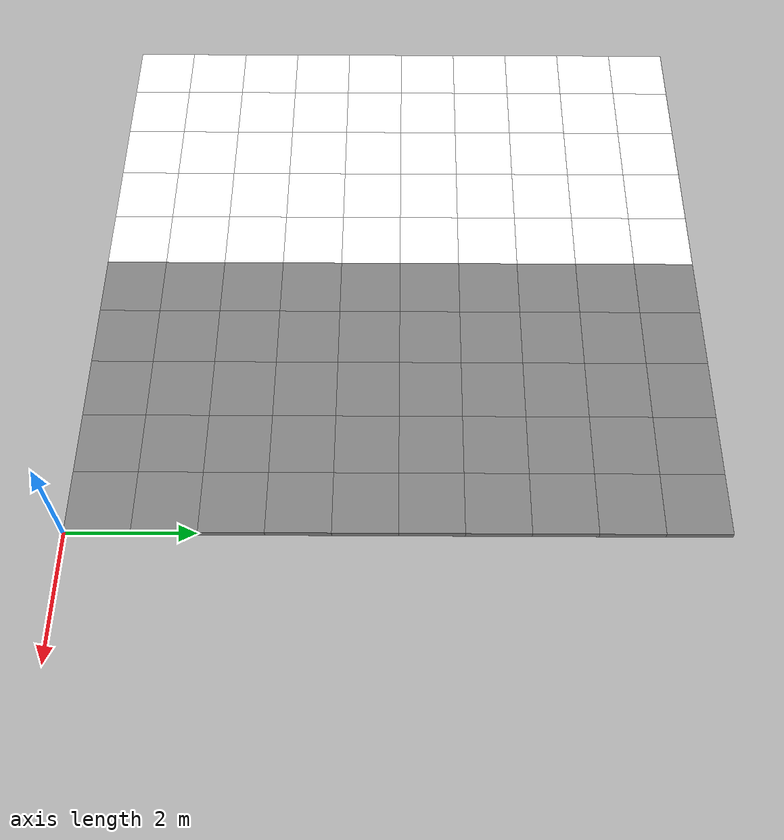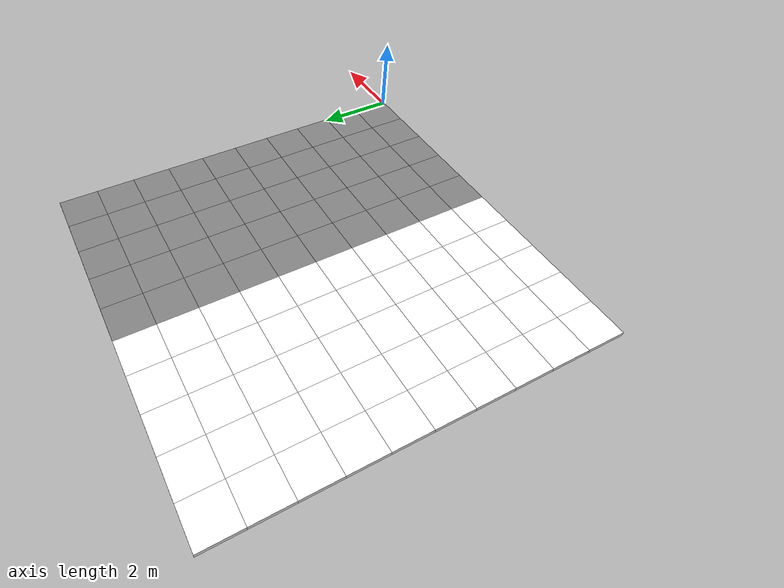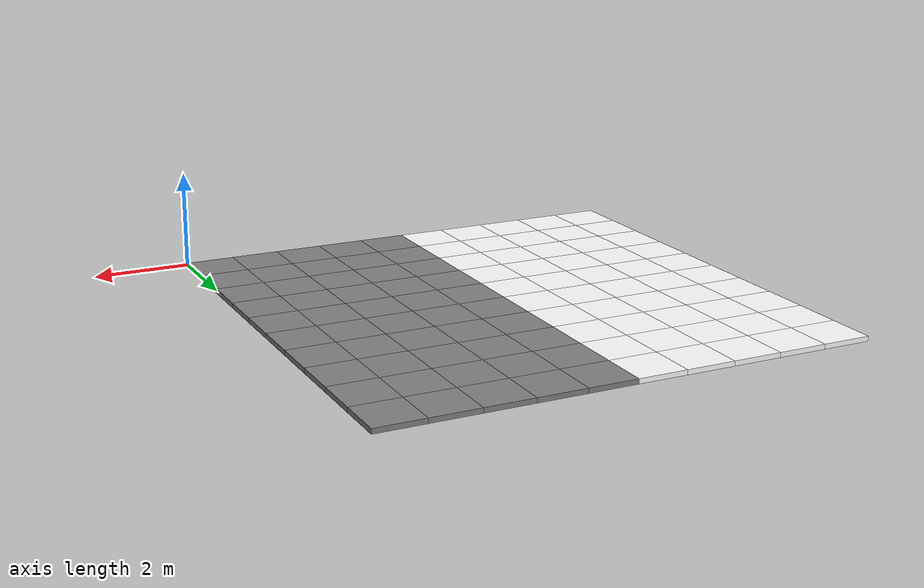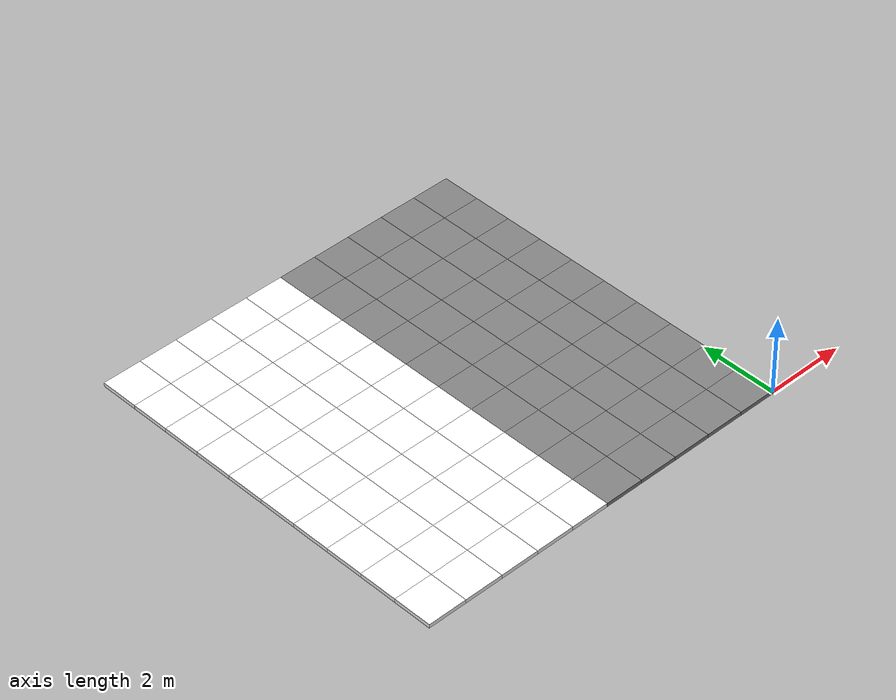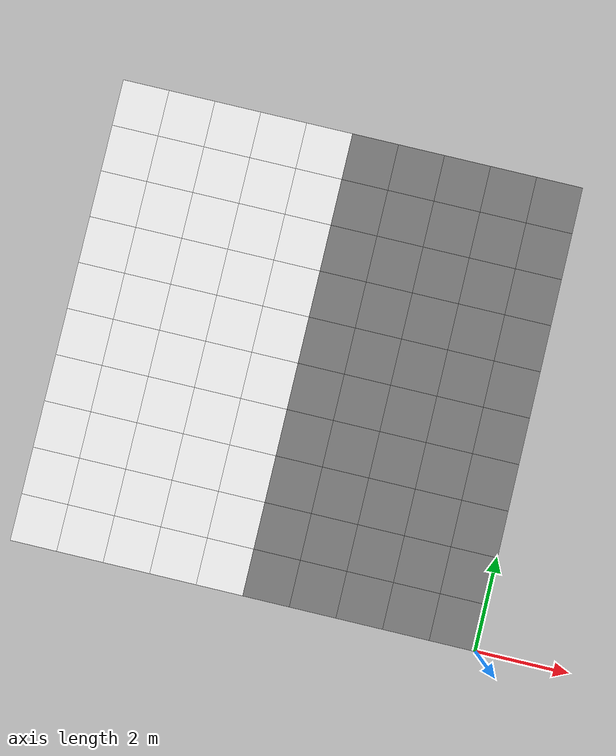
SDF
<sdf version="1.8">
 <world name="binary_discrimination_world">
  <model name="tile_-9.5_0.5">
   <static>true</static>
   <pose>-9.5 0.5 0 0 0 0</pose>
   <link name="link">
    <collision name="collision"><geometry><box><size>1 1 0.1</size></box></geometry></collision>
    <visual name="visual">
     <geometry><box><size>1 1 0.1</size></box></geometry>
     <material><ambient>1 1 1 1</ambient><diffuse>1 1 1 1</diffuse></material>
    </visual>
   </link>
  </model>
  <model name="tile_-9.5_1.5">
   <static>true</static>
   <pose>-9.5 1.5 0 0 0 0</pose>
   <link name="link">
    <collision name="collision"><geometry><box><size>1 1 0.1</size></box></geometry></collision>
    <visual name="visual">
     <geometry><box><size>1 1 0.1</size></box></geometry>
     <material><ambient>1 1 1 1</ambient><diffuse>1 1 1 1</diffuse></material>
    </visual>
   </link>
  </model>
  <model name="tile_-9.5_2.5">
   <static>true</static>
   <pose>-9.5 2.5 0 0 0 0</pose>
   <link name="link">
    <collision name="collision"><geometry><box><size>1 1 0.1</size></box></geometry></collision>
    <visual name="visual">
     <geometry><box><size>1 1 0.1</size></box></geometry>
     <material><ambient>1 1 1 1</ambient><diffuse>1 1 1 1</diffuse></material>
    </visual>
   </link>
  </model>
  <model name="tile_-9.5_3.5">
   <static>true</static>
   <pose>-9.5 3.5 0 0 0 0</pose>
   <link name="link">
    <collision name="collision"><geometry><box><size>1 1 0.1</size></box></geometry></collision>
    <visual name="visual">
     <geometry><box><size>1 1 0.1</size></box></geometry>
     <material><ambient>1 1 1 1</ambient><diffuse>1 1 1 1</diffuse></material>
    </visual>
   </link>
  </model>
  <model name="tile_-9.5_4.5">
   <static>true</static>
   <pose>-9.5 4.5 0 0 0 0</pose>
   <link name="link">
    <collision name="collision"><geometry><box><size>1 1 0.1</size></box></geometry></collision>
    <visual name="visual">
     <geometry><box><size>1 1 0.1</size></box></geometry>
     <material><ambient>1 1 1 1</ambient><diffuse>1 1 1 1</diffuse></material>
    </visual>
   </link>
  </model>
  <model name="tile_-9.5_5.5">
   <static>true</static>
   <pose>-9.5 5.5 0 0 0 0</pose>
   <link name="link">
    <collision name="collision"><geometry><box><size>1 1 0.1</size></box></geometry></collision>
    <visual name="visual">
     <geometry><box><size>1 1 0.1</size></box></geometry>
     <material><ambient>1 1 1 1</ambient><diffuse>1 1 1 1</diffuse></material>
    </visual>
   </link>
  </model>
  <model name="tile_-9.5_6.5">
   <static>true</static>
   <pose>-9.5 6.5 0 0 0 0</pose>
   <link name="link">
    <collision name="collision"><geometry><box><size>1 1 0.1</size></box></geometry></collision>
    <visual name="visual">
     <geometry><box><size>1 1 0.1</size></box></geometry>
     <material><ambient>1 1 1 1</ambient><diffuse>1 1 1 1</diffuse></material>
    </visual>
   </link>
  </model>
  <model name="tile_-9.5_7.5">
   <static>true</static>
   <pose>-9.5 7.5 0 0 0 0</pose>
   <link name="link">
    <collision name="collision"><geometry><box><size>1 1 0.1</size></box></geometry></collision>
    <visual name="visual">
     <geometry><box><size>1 1 0.1</size></box></geometry>
     <material><ambient>1 1 1 1</ambient><diffuse>1 1 1 1</diffuse></material>
    </visual>
   </link>
  </model>
  <model name="tile_-9.5_8.5">
   <static>true</static>
   <pose>-9.5 8.5 0 0 0 0</pose>
   <link name="link">
    <collision name="collision"><geometry><box><size>1 1 0.1</size></box></geometry></collision>
    <visual name="visual">
     <geometry><box><size>1 1 0.1</size></box></geometry>
     <material><ambient>1 1 1 1</ambient><diffuse>1 1 1 1</diffuse></material>
    </visual>
   </link>
  </model>
  <model name="tile_-9.5_9.5">
   <static>true</static>
   <pose>-9.5 9.5 0 0 0 0</pose>
   <link name="link">
    <collision name="collision"><geometry><box><size>1 1 0.1</size></box></geometry></collision>
    <visual name="visual">
     <geometry><box><size>1 1 0.1</size></box></geometry>
     <material><ambient>1 1 1 1</ambient><diffuse>1 1 1 1</diffuse></material>
    </visual>
   </link>
  </model>
  <model name="tile_-8.5_0.5">
   <static>true</static>
   <pose>-8.5 0.5 0 0 0 0</pose>
   <link name="link">
    <collision name="collision"><geometry><box><size>1 1 0.1</size></box></geometry></collision>
    <visual name="visual">
     <geometry><box><size>1 1 0.1</size></box></geometry>
     <material><ambient>1 1 1 1</ambient><diffuse>1 1 1 1</diffuse></material>
    </visual>
   </link>
  </model>
  <model name="tile_-8.5_1.5">
   <static>true</static>
   <pose>-8.5 1.5 0 0 0 0</pose>
   <link name="link">
    <collision name="collision"><geometry><box><size>1 1 0.1</size></box></geometry></collision>
    <visual name="visual">
     <geometry><box><size>1 1 0.1</size></box></geometry>
     <material><ambient>1 1 1 1</ambient><diffuse>1 1 1 1</diffuse></material>
    </visual>
   </link>
  </model>
  <model name="tile_-8.5_2.5">
   <static>true</static>
   <pose>-8.5 2.5 0 0 0 0</pose>
   <link name="link">
    <collision name="collision"><geometry><box><size>1 1 0.1</size></box></geometry></collision>
    <visual name="visual">
     <geometry><box><size>1 1 0.1</size></box></geometry>
     <material><ambient>1 1 1 1</ambient><diffuse>1 1 1 1</diffuse></material>
    </visual>
   </link>
  </model>
  <model name="tile_-8.5_3.5">
   <static>true</static>
   <pose>-8.5 3.5 0 0 0 0</pose>
   <link name="link">
    <collision name="collision"><geometry><box><size>1 1 0.1</size></box></geometry></collision>
    <visual name="visual">
     <geometry><box><size>1 1 0.1</size></box></geometry>
     <material><ambient>1 1 1 1</ambient><diffuse>1 1 1 1</diffuse></material>
    </visual>
   </link>
  </model>
  <model name="tile_-8.5_4.5">
   <static>true</static>
   <pose>-8.5 4.5 0 0 0 0</pose>
   <link name="link">
    <collision name="collision"><geometry><box><size>1 1 0.1</size></box></geometry></collision>
    <visual name="visual">
     <geometry><box><size>1 1 0.1</size></box></geometry>
     <material><ambient>1 1 1 1</ambient><diffuse>1 1 1 1</diffuse></material>
    </visual>
   </link>
  </model>
  <model name="tile_-8.5_5.5">
   <static>true</static>
   <pose>-8.5 5.5 0 0 0 0</pose>
   <link name="link">
    <collision name="collision"><geometry><box><size>1 1 0.1</size></box></geometry></collision>
    <visual name="visual">
     <geometry><box><size>1 1 0.1</size></box></geometry>
     <material><ambient>1 1 1 1</ambient><diffuse>1 1 1 1</diffuse></material>
    </visual>
   </link>
  </model>
  <model name="tile_-8.5_6.5">
   <static>true</static>
   <pose>-8.5 6.5 0 0 0 0</pose>
   <link name="link">
    <collision name="collision"><geometry><box><size>1 1 0.1</size></box></geometry></collision>
    <visual name="visual">
     <geometry><box><size>1 1 0.1</size></box></geometry>
     <material><ambient>1 1 1 1</ambient><diffuse>1 1 1 1</diffuse></material>
    </visual>
   </link>
  </model>
  <model name="tile_-8.5_7.5">
   <static>true</static>
   <pose>-8.5 7.5 0 0 0 0</pose>
   <link name="link">
    <collision name="collision"><geometry><box><size>1 1 0.1</size></box></geometry></collision>
    <visual name="visual">
     <geometry><box><size>1 1 0.1</size></box></geometry>
     <material><ambient>1 1 1 1</ambient><diffuse>1 1 1 1</diffuse></material>
    </visual>
   </link>
  </model>
  <model name="tile_-8.5_8.5">
   <static>true</static>
   <pose>-8.5 8.5 0 0 0 0</pose>
   <link name="link">
    <collision name="collision"><geometry><box><size>1 1 0.1</size></box></geometry></collision>
    <visual name="visual">
     <geometry><box><size>1 1 0.1</size></box></geometry>
     <material><ambient>1 1 1 1</ambient><diffuse>1 1 1 1</diffuse></material>
    </visual>
   </link>
  </model>
  <model name="tile_-8.5_9.5">
   <static>true</static>
   <pose>-8.5 9.5 0 0 0 0</pose>
   <link name="link">
    <collision name="collision"><geometry><box><size>1 1 0.1</size></box></geometry></collision>
    <visual name="visual">
     <geometry><box><size>1 1 0.1</size></box></geometry>
     <material><ambient>1 1 1 1</ambient><diffuse>1 1 1 1</diffuse></material>
    </visual>
   </link>
  </model>
  <model name="tile_-7.5_0.5">
   <static>true</static>
   <pose>-7.5 0.5 0 0 0 0</pose>
   <link name="link">
    <collision name="collision"><geometry><box><size>1 1 0.1</size></box></geometry></collision>
    <visual name="visual">
     <geometry><box><size>1 1 0.1</size></box></geometry>
     <material><ambient>1 1 1 1</ambient><diffuse>1 1 1 1</diffuse></material>
    </visual>
   </link>
  </model>
  <model name="tile_-7.5_1.5">
   <static>true</static>
   <pose>-7.5 1.5 0 0 0 0</pose>
   <link name="link">
    <collision name="collision"><geometry><box><size>1 1 0.1</size></box></geometry></collision>
    <visual name="visual">
     <geometry><box><size>1 1 0.1</size></box></geometry>
     <material><ambient>1 1 1 1</ambient><diffuse>1 1 1 1</diffuse></material>
    </visual>
   </link>
  </model>
  <model name="tile_-7.5_2.5">
   <static>true</static>
   <pose>-7.5 2.5 0 0 0 0</pose>
   <link name="link">
    <collision name="collision"><geometry><box><size>1 1 0.1</size></box></geometry></collision>
    <visual name="visual">
     <geometry><box><size>1 1 0.1</size></box></geometry>
     <material><ambient>1 1 1 1</ambient><diffuse>1 1 1 1</diffuse></material>
    </visual>
   </link>
  </model>
  <model name="tile_-7.5_3.5">
   <static>true</static>
   <pose>-7.5 3.5 0 0 0 0</pose>
   <link name="link">
    <collision name="collision"><geometry><box><size>1 1 0.1</size></box></geometry></collision>
    <visual name="visual">
     <geometry><box><size>1 1 0.1</size></box></geometry>
     <material><ambient>1 1 1 1</ambient><diffuse>1 1 1 1</diffuse></material>
    </visual>
   </link>
  </model>
  <model name="tile_-7.5_4.5">
   <static>true</static>
   <pose>-7.5 4.5 0 0 0 0</pose>
   <link name="link">
    <collision name="collision"><geometry><box><size>1 1 0.1</size></box></geometry></collision>
    <visual name="visual">
     <geometry><box><size>1 1 0.1</size></box></geometry>
     <material><ambient>1 1 1 1</ambient><diffuse>1 1 1 1</diffuse></material>
    </visual>
   </link>
  </model>
  <model name="tile_-7.5_5.5">
   <static>true</static>
   <pose>-7.5 5.5 0 0 0 0</pose>
   <link name="link">
    <collision name="collision"><geometry><box><size>1 1 0.1</size></box></geometry></collision>
    <visual name="visual">
     <geometry><box><size>1 1 0.1</size></box></geometry>
     <material><ambient>1 1 1 1</ambient><diffuse>1 1 1 1</diffuse></material>
    </visual>
   </link>
  </model>
  <model name="tile_-7.5_6.5">
   <static>true</static>
   <pose>-7.5 6.5 0 0 0 0</pose>
   <link name="link">
    <collision name="collision"><geometry><box><size>1 1 0.1</size></box></geometry></collision>
    <visual name="visual">
     <geometry><box><size>1 1 0.1</size></box></geometry>
     <material><ambient>1 1 1 1</ambient><diffuse>1 1 1 1</diffuse></material>
    </visual>
   </link>
  </model>
  <model name="tile_-7.5_7.5">
   <static>true</static>
   <pose>-7.5 7.5 0 0 0 0</pose>
   <link name="link">
    <collision name="collision"><geometry><box><size>1 1 0.1</size></box></geometry></collision>
    <visual name="visual">
     <geometry><box><size>1 1 0.1</size></box></geometry>
     <material><ambient>1 1 1 1</ambient><diffuse>1 1 1 1</diffuse></material>
    </visual>
   </link>
  </model>
  <model name="tile_-7.5_8.5">
   <static>true</static>
   <pose>-7.5 8.5 0 0 0 0</pose>
   <link name="link">
    <collision name="collision"><geometry><box><size>1 1 0.1</size></box></geometry></collision>
    <visual name="visual">
     <geometry><box><size>1 1 0.1</size></box></geometry>
     <material><ambient>1 1 1 1</ambient><diffuse>1 1 1 1</diffuse></material>
    </visual>
   </link>
  </model>
  <model name="tile_-7.5_9.5">
   <static>true</static>
   <pose>-7.5 9.5 0 0 0 0</pose>
   <link name="link">
    <collision name="collision"><geometry><box><size>1 1 0.1</size></box></geometry></collision>
    <visual name="visual">
     <geometry><box><size>1 1 0.1</size></box></geometry>
     <material><ambient>1 1 1 1</ambient><diffuse>1 1 1 1</diffuse></material>
    </visual>
   </link>
  </model>
  <model name="tile_-6.5_0.5">
   <static>true</static>
   <pose>-6.5 0.5 0 0 0 0</pose>
   <link name="link">
    <collision name="collision"><geometry><box><size>1 1 0.1</size></box></geometry></collision>
    <visual name="visual">
     <geometry><box><size>1 1 0.1</size></box></geometry>
     <material><ambient>1 1 1 1</ambient><diffuse>1 1 1 1</diffuse></material>
    </visual>
   </link>
  </model>
  <model name="tile_-6.5_1.5">
   <static>true</static>
   <pose>-6.5 1.5 0 0 0 0</pose>
   <link name="link">
    <collision name="collision"><geometry><box><size>1 1 0.1</size></box></geometry></collision>
    <visual name="visual">
     <geometry><box><size>1 1 0.1</size></box></geometry>
     <material><ambient>1 1 1 1</ambient><diffuse>1 1 1 1</diffuse></material>
    </visual>
   </link>
  </model>
  <model name="tile_-6.5_2.5">
   <static>true</static>
   <pose>-6.5 2.5 0 0 0 0</pose>
   <link name="link">
    <collision name="collision"><geometry><box><size>1 1 0.1</size></box></geometry></collision>
    <visual name="visual">
     <geometry><box><size>1 1 0.1</size></box></geometry>
     <material><ambient>1 1 1 1</ambient><diffuse>1 1 1 1</diffuse></material>
    </visual>
   </link>
  </model>
  <model name="tile_-6.5_3.5">
   <static>true</static>
   <pose>-6.5 3.5 0 0 0 0</pose>
   <link name="link">
    <collision name="collision"><geometry><box><size>1 1 0.1</size></box></geometry></collision>
    <visual name="visual">
     <geometry><box><size>1 1 0.1</size></box></geometry>
     <material><ambient>1 1 1 1</ambient><diffuse>1 1 1 1</diffuse></material>
    </visual>
   </link>
  </model>
  <model name="tile_-6.5_4.5">
   <static>true</static>
   <pose>-6.5 4.5 0 0 0 0</pose>
   <link name="link">
    <collision name="collision"><geometry><box><size>1 1 0.1</size></box></geometry></collision>
    <visual name="visual">
     <geometry><box><size>1 1 0.1</size></box></geometry>
     <material><ambient>1 1 1 1</ambient><diffuse>1 1 1 1</diffuse></material>
    </visual>
   </link>
  </model>
  <model name="tile_-6.5_5.5">
   <static>true</static>
   <pose>-6.5 5.5 0 0 0 0</pose>
   <link name="link">
    <collision name="collision"><geometry><box><size>1 1 0.1</size></box></geometry></collision>
    <visual name="visual">
     <geometry><box><size>1 1 0.1</size></box></geometry>
     <material><ambient>1 1 1 1</ambient><diffuse>1 1 1 1</diffuse></material>
    </visual>
   </link>
  </model>
  <model name="tile_-6.5_6.5">
   <static>true</static>
   <pose>-6.5 6.5 0 0 0 0</pose>
   <link name="link">
    <collision name="collision"><geometry><box><size>1 1 0.1</size></box></geometry></collision>
    <visual name="visual">
     <geometry><box><size>1 1 0.1</size></box></geometry>
     <material><ambient>1 1 1 1</ambient><diffuse>1 1 1 1</diffuse></material>
    </visual>
   </link>
  </model>
  <model name="tile_-6.5_7.5">
   <static>true</static>
   <pose>-6.5 7.5 0 0 0 0</pose>
   <link name="link">
    <collision name="collision"><geometry><box><size>1 1 0.1</size></box></geometry></collision>
    <visual name="visual">
     <geometry><box><size>1 1 0.1</size></box></geometry>
     <material><ambient>1 1 1 1</ambient><diffuse>1 1 1 1</diffuse></material>
    </visual>
   </link>
  </model>
  <model name="tile_-6.5_8.5">
   <static>true</static>
   <pose>-6.5 8.5 0 0 0 0</pose>
   <link name="link">
    <collision name="collision"><geometry><box><size>1 1 0.1</size></box></geometry></collision>
    <visual name="visual">
     <geometry><box><size>1 1 0.1</size></box></geometry>
     <material><ambient>1 1 1 1</ambient><diffuse>1 1 1 1</diffuse></material>
    </visual>
   </link>
  </model>
  <model name="tile_-6.5_9.5">
   <static>true</static>
   <pose>-6.5 9.5 0 0 0 0</pose>
   <link name="link">
    <collision name="collision"><geometry><box><size>1 1 0.1</size></box></geometry></collision>
    <visual name="visual">
     <geometry><box><size>1 1 0.1</size></box></geometry>
     <material><ambient>1 1 1 1</ambient><diffuse>1 1 1 1</diffuse></material>
    </visual>
   </link>
  </model>
  <model name="tile_-5.5_0.5">
   <static>true</static>
   <pose>-5.5 0.5 0 0 0 0</pose>
   <link name="link">
    <collision name="collision"><geometry><box><size>1 1 0.1</size></box></geometry></collision>
    <visual name="visual">
     <geometry><box><size>1 1 0.1</size></box></geometry>
     <material><ambient>1 1 1 1</ambient><diffuse>1 1 1 1</diffuse></material>
    </visual>
   </link>
  </model>
  <model name="tile_-5.5_1.5">
   <static>true</static>
   <pose>-5.5 1.5 0 0 0 0</pose>
   <link name="link">
    <collision name="collision"><geometry><box><size>1 1 0.1</size></box></geometry></collision>
    <visual name="visual">
     <geometry><box><size>1 1 0.1</size></box></geometry>
     <material><ambient>1 1 1 1</ambient><diffuse>1 1 1 1</diffuse></material>
    </visual>
   </link>
  </model>
  <model name="tile_-5.5_2.5">
   <static>true</static>
   <pose>-5.5 2.5 0 0 0 0</pose>
   <link name="link">
    <collision name="collision"><geometry><box><size>1 1 0.1</size></box></geometry></collision>
    <visual name="visual">
     <geometry><box><size>1 1 0.1</size></box></geometry>
     <material><ambient>1 1 1 1</ambient><diffuse>1 1 1 1</diffuse></material>
    </visual>
   </link>
  </model>
  <model name="tile_-5.5_3.5">
   <static>true</static>
   <pose>-5.5 3.5 0 0 0 0</pose>
   <link name="link">
    <collision name="collision"><geometry><box><size>1 1 0.1</size></box></geometry></collision>
    <visual name="visual">
     <geometry><box><size>1 1 0.1</size></box></geometry>
     <material><ambient>1 1 1 1</ambient><diffuse>1 1 1 1</diffuse></material>
    </visual>
   </link>
  </model>
  <model name="tile_-5.5_4.5">
   <static>true</static>
   <pose>-5.5 4.5 0 0 0 0</pose>
   <link name="link">
    <collision name="collision"><geometry><box><size>1 1 0.1</size></box></geometry></collision>
    <visual name="visual">
     <geometry><box><size>1 1 0.1</size></box></geometry>
     <material><ambient>1 1 1 1</ambient><diffuse>1 1 1 1</diffuse></material>
    </visual>
   </link>
  </model>
  <model name="tile_-5.5_5.5">
   <static>true</static>
   <pose>-5.5 5.5 0 0 0 0</pose>
   <link name="link">
    <collision name="collision"><geometry><box><size>1 1 0.1</size></box></geometry></collision>
    <visual name="visual">
     <geometry><box><size>1 1 0.1</size></box></geometry>
     <material><ambient>1 1 1 1</ambient><diffuse>1 1 1 1</diffuse></material>
    </visual>
   </link>
  </model>
  <model name="tile_-5.5_6.5">
   <static>true</static>
   <pose>-5.5 6.5 0 0 0 0</pose>
   <link name="link">
    <collision name="collision"><geometry><box><size>1 1 0.1</size></box></geometry></collision>
    <visual name="visual">
     <geometry><box><size>1 1 0.1</size></box></geometry>
     <material><ambient>1 1 1 1</ambient><diffuse>1 1 1 1</diffuse></material>
    </visual>
   </link>
  </model>
  <model name="tile_-5.5_7.5">
   <static>true</static>
   <pose>-5.5 7.5 0 0 0 0</pose>
   <link name="link">
    <collision name="collision"><geometry><box><size>1 1 0.1</size></box></geometry></collision>
    <visual name="visual">
     <geometry><box><size>1 1 0.1</size></box></geometry>
     <material><ambient>1 1 1 1</ambient><diffuse>1 1 1 1</diffuse></material>
    </visual>
   </link>
  </model>
  <model name="tile_-5.5_8.5">
   <static>true</static>
   <pose>-5.5 8.5 0 0 0 0</pose>
   <link name="link">
    <collision name="collision"><geometry><box><size>1 1 0.1</size></box></geometry></collision>
    <visual name="visual">
     <geometry><box><size>1 1 0.1</size></box></geometry>
     <material><ambient>1 1 1 1</ambient><diffuse>1 1 1 1</diffuse></material>
    </visual>
   </link>
  </model>
  <model name="tile_-5.5_9.5">
   <static>true</static>
   <pose>-5.5 9.5 0 0 0 0</pose>
   <link name="link">
    <collision name="collision"><geometry><box><size>1 1 0.1</size></box></geometry></collision>
    <visual name="visual">
     <geometry><box><size>1 1 0.1</size></box></geometry>
     <material><ambient>1 1 1 1</ambient><diffuse>1 1 1 1</diffuse></material>
    </visual>
   </link>
  </model>
  <model name="tile_-4.5_0.5">
   <static>true</static>
   <pose>-4.5 0.5 0 0 0 0</pose>
   <link name="link">
    <collision name="collision"><geometry><box><size>1 1 0.1</size></box></geometry></collision>
    <visual name="visual">
     <geometry><box><size>1 1 0.1</size></box></geometry>
     <material><ambient>0.5 0.5 0.5 1</ambient><diffuse>0.5 0.5 0.5 1</diffuse></material>
    </visual>
   </link>
  </model>
  <model name="tile_-4.5_1.5">
   <static>true</static>
   <pose>-4.5 1.5 0 0 0 0</pose>
   <link name="link">
    <collision name="collision"><geometry><box><size>1 1 0.1</size></box></geometry></collision>
    <visual name="visual">
     <geometry><box><size>1 1 0.1</size></box></geometry>
     <material><ambient>0.5 0.5 0.5 1</ambient><diffuse>0.5 0.5 0.5 1</diffuse></material>
    </visual>
   </link>
  </model>
  <model name="tile_-4.5_2.5">
   <static>true</static>
   <pose>-4.5 2.5 0 0 0 0</pose>
   <link name="link">
    <collision name="collision"><geometry><box><size>1 1 0.1</size></box></geometry></collision>
    <visual name="visual">
     <geometry><box><size>1 1 0.1</size></box></geometry>
     <material><ambient>0.5 0.5 0.5 1</ambient><diffuse>0.5 0.5 0.5 1</diffuse></material>
    </visual>
   </link>
  </model>
  <model name="tile_-4.5_3.5">
   <static>true</static>
   <pose>-4.5 3.5 0 0 0 0</pose>
   <link name="link">
    <collision name="collision"><geometry><box><size>1 1 0.1</size></box></geometry></collision>
    <visual name="visual">
     <geometry><box><size>1 1 0.1</size></box></geometry>
     <material><ambient>0.5 0.5 0.5 1</ambient><diffuse>0.5 0.5 0.5 1</diffuse></material>
    </visual>
   </link>
  </model>
  <model name="tile_-4.5_4.5">
   <static>true</static>
   <pose>-4.5 4.5 0 0 0 0</pose>
   <link name="link">
    <collision name="collision"><geometry><box><size>1 1 0.1</size></box></geometry></collision>
    <visual name="visual">
     <geometry><box><size>1 1 0.1</size></box></geometry>
     <material><ambient>0.5 0.5 0.5 1</ambient><diffuse>0.5 0.5 0.5 1</diffuse></material>
    </visual>
   </link>
  </model>
  <model name="tile_-4.5_5.5">
   <static>true</static>
   <pose>-4.5 5.5 0 0 0 0</pose>
   <link name="link">
    <collision name="collision"><geometry><box><size>1 1 0.1</size></box></geometry></collision>
    <visual name="visual">
     <geometry><box><size>1 1 0.1</size></box></geometry>
     <material><ambient>0.5 0.5 0.5 1</ambient><diffuse>0.5 0.5 0.5 1</diffuse></material>
    </visual>
   </link>
  </model>
  <model name="tile_-4.5_6.5">
   <static>true</static>
   <pose>-4.5 6.5 0 0 0 0</pose>
   <link name="link">
    <collision name="collision"><geometry><box><size>1 1 0.1</size></box></geometry></collision>
    <visual name="visual">
     <geometry><box><size>1 1 0.1</size></box></geometry>
     <material><ambient>0.5 0.5 0.5 1</ambient><diffuse>0.5 0.5 0.5 1</diffuse></material>
    </visual>
   </link>
  </model>
  <model name="tile_-4.5_7.5">
   <static>true</static>
   <pose>-4.5 7.5 0 0 0 0</pose>
   <link name="link">
    <collision name="collision"><geometry><box><size>1 1 0.1</size></box></geometry></collision>
    <visual name="visual">
     <geometry><box><size>1 1 0.1</size></box></geometry>
     <material><ambient>0.5 0.5 0.5 1</ambient><diffuse>0.5 0.5 0.5 1</diffuse></material>
    </visual>
   </link>
  </model>
  <model name="tile_-4.5_8.5">
   <static>true</static>
   <pose>-4.5 8.5 0 0 0 0</pose>
   <link name="link">
    <collision name="collision"><geometry><box><size>1 1 0.1</size></box></geometry></collision>
    <visual name="visual">
     <geometry><box><size>1 1 0.1</size></box></geometry>
     <material><ambient>0.5 0.5 0.5 1</ambient><diffuse>0.5 0.5 0.5 1</diffuse></material>
    </visual>
   </link>
  </model>
  <model name="tile_-4.5_9.5">
   <static>true</static>
   <pose>-4.5 9.5 0 0 0 0</pose>
   <link name="link">
    <collision name="collision"><geometry><box><size>1 1 0.1</size></box></geometry></collision>
    <visual name="visual">
     <geometry><box><size>1 1 0.1</size></box></geometry>
     <material><ambient>0.5 0.5 0.5 1</ambient><diffuse>0.5 0.5 0.5 1</diffuse></material>
    </visual>
   </link>
  </model>
  <model name="tile_-3.5_0.5">
   <static>true</static>
   <pose>-3.5 0.5 0 0 0 0</pose>
   <link name="link">
    <collision name="collision"><geometry><box><size>1 1 0.1</size></box></geometry></collision>
    <visual name="visual">
     <geometry><box><size>1 1 0.1</size></box></geometry>
     <material><ambient>0.5 0.5 0.5 1</ambient><diffuse>0.5 0.5 0.5 1</diffuse></material>
    </visual>
   </link>
  </model>
  <model name="tile_-3.5_1.5">
   <static>true</static>
   <pose>-3.5 1.5 0 0 0 0</pose>
   <link name="link">
    <collision name="collision"><geometry><box><size>1 1 0.1</size></box></geometry></collision>
    <visual name="visual">
     <geometry><box><size>1 1 0.1</size></box></geometry>
     <material><ambient>0.5 0.5 0.5 1</ambient><diffuse>0.5 0.5 0.5 1</diffuse></material>
    </visual>
   </link>
  </model>
  <model name="tile_-3.5_2.5">
   <static>true</static>
   <pose>-3.5 2.5 0 0 0 0</pose>
   <link name="link">
    <collision name="collision"><geometry><box><size>1 1 0.1</size></box></geometry></collision>
    <visual name="visual">
     <geometry><box><size>1 1 0.1</size></box></geometry>
     <material><ambient>0.5 0.5 0.5 1</ambient><diffuse>0.5 0.5 0.5 1</diffuse></material>
    </visual>
   </link>
  </model>
  <model name="tile_-3.5_3.5">
   <static>true</static>
   <pose>-3.5 3.5 0 0 0 0</pose>
   <link name="link">
    <collision name="collision"><geometry><box><size>1 1 0.1</size></box></geometry></collision>
    <visual name="visual">
     <geometry><box><size>1 1 0.1</size></box></geometry>
     <material><ambient>0.5 0.5 0.5 1</ambient><diffuse>0.5 0.5 0.5 1</diffuse></material>
    </visual>
   </link>
  </model>
  <model name="tile_-3.5_4.5">
   <static>true</static>
   <pose>-3.5 4.5 0 0 0 0</pose>
   <link name="link">
    <collision name="collision"><geometry><box><size>1 1 0.1</size></box></geometry></collision>
    <visual name="visual">
     <geometry><box><size>1 1 0.1</size></box></geometry>
     <material><ambient>0.5 0.5 0.5 1</ambient><diffuse>0.5 0.5 0.5 1</diffuse></material>
    </visual>
   </link>
  </model>
  <model name="tile_-3.5_5.5">
   <static>true</static>
   <pose>-3.5 5.5 0 0 0 0</pose>
   <link name="link">
    <collision name="collision"><geometry><box><size>1 1 0.1</size></box></geometry></collision>
    <visual name="visual">
     <geometry><box><size>1 1 0.1</size></box></geometry>
     <material><ambient>0.5 0.5 0.5 1</ambient><diffuse>0.5 0.5 0.5 1</diffuse></material>
    </visual>
   </link>
  </model>
  <model name="tile_-3.5_6.5">
   <static>true</static>
   <pose>-3.5 6.5 0 0 0 0</pose>
   <link name="link">
    <collision name="collision"><geometry><box><size>1 1 0.1</size></box></geometry></collision>
    <visual name="visual">
     <geometry><box><size>1 1 0.1</size></box></geometry>
     <material><ambient>0.5 0.5 0.5 1</ambient><diffuse>0.5 0.5 0.5 1</diffuse></material>
    </visual>
   </link>
  </model>
  <model name="tile_-3.5_7.5">
   <static>true</static>
   <pose>-3.5 7.5 0 0 0 0</pose>
   <link name="link">
    <collision name="collision"><geometry><box><size>1 1 0.1</size></box></geometry></collision>
    <visual name="visual">
     <geometry><box><size>1 1 0.1</size></box></geometry>
     <material><ambient>0.5 0.5 0.5 1</ambient><diffuse>0.5 0.5 0.5 1</diffuse></material>
    </visual>
   </link>
  </model>
  <model name="tile_-3.5_8.5">
   <static>true</static>
   <pose>-3.5 8.5 0 0 0 0</pose>
   <link name="link">
    <collision name="collision"><geometry><box><size>1 1 0.1</size></box></geometry></collision>
    <visual name="visual">
     <geometry><box><size>1 1 0.1</size></box></geometry>
     <material><ambient>0.5 0.5 0.5 1</ambient><diffuse>0.5 0.5 0.5 1</diffuse></material>
    </visual>
   </link>
  </model>
  <model name="tile_-3.5_9.5">
   <static>true</static>
   <pose>-3.5 9.5 0 0 0 0</pose>
   <link name="link">
    <collision name="collision"><geometry><box><size>1 1 0.1</size></box></geometry></collision>
    <visual name="visual">
     <geometry><box><size>1 1 0.1</size></box></geometry>
     <material><ambient>0.5 0.5 0.5 1</ambient><diffuse>0.5 0.5 0.5 1</diffuse></material>
    </visual>
   </link>
  </model>
  <model name="tile_-2.5_0.5">
   <static>true</static>
   <pose>-2.5 0.5 0 0 0 0</pose>
   <link name="link">
    <collision name="collision"><geometry><box><size>1 1 0.1</size></box></geometry></collision>
    <visual name="visual">
     <geometry><box><size>1 1 0.1</size></box></geometry>
     <material><ambient>0.5 0.5 0.5 1</ambient><diffuse>0.5 0.5 0.5 1</diffuse></material>
    </visual>
   </link>
  </model>
  <model name="tile_-2.5_1.5">
   <static>true</static>
   <pose>-2.5 1.5 0 0 0 0</pose>
   <link name="link">
    <collision name="collision"><geometry><box><size>1 1 0.1</size></box></geometry></collision>
    <visual name="visual">
     <geometry><box><size>1 1 0.1</size></box></geometry>
     <material><ambient>0.5 0.5 0.5 1</ambient><diffuse>0.5 0.5 0.5 1</diffuse></material>
    </visual>
   </link>
  </model>
  <model name="tile_-2.5_2.5">
   <static>true</static>
   <pose>-2.5 2.5 0 0 0 0</pose>
   <link name="link">
    <collision name="collision"><geometry><box><size>1 1 0.1</size></box></geometry></collision>
    <visual name="visual">
     <geometry><box><size>1 1 0.1</size></box></geometry>
     <material><ambient>0.5 0.5 0.5 1</ambient><diffuse>0.5 0.5 0.5 1</diffuse></material>
    </visual>
   </link>
  </model>
  <model name="tile_-2.5_3.5">
   <static>true</static>
   <pose>-2.5 3.5 0 0 0 0</pose>
   <link name="link">
    <collision name="collision"><geometry><box><size>1 1 0.1</size></box></geometry></collision>
    <visual name="visual">
     <geometry><box><size>1 1 0.1</size></box></geometry>
     <material><ambient>0.5 0.5 0.5 1</ambient><diffuse>0.5 0.5 0.5 1</diffuse></material>
    </visual>
   </link>
  </model>
  <model name="tile_-2.5_4.5">
   <static>true</static>
   <pose>-2.5 4.5 0 0 0 0</pose>
   <link name="link">
    <collision name="collision"><geometry><box><size>1 1 0.1</size></box></geometry></collision>
    <visual name="visual">
     <geometry><box><size>1 1 0.1</size></box></geometry>
     <material><ambient>0.5 0.5 0.5 1</ambient><diffuse>0.5 0.5 0.5 1</diffuse></material>
    </visual>
   </link>
  </model>
  <model name="tile_-2.5_5.5">
   <static>true</static>
   <pose>-2.5 5.5 0 0 0 0</pose>
   <link name="link">
    <collision name="collision"><geometry><box><size>1 1 0.1</size></box></geometry></collision>
    <visual name="visual">
     <geometry><box><size>1 1 0.1</size></box></geometry>
     <material><ambient>0.5 0.5 0.5 1</ambient><diffuse>0.5 0.5 0.5 1</diffuse></material>
    </visual>
   </link>
  </model>
  <model name="tile_-2.5_6.5">
   <static>true</static>
   <pose>-2.5 6.5 0 0 0 0</pose>
   <link name="link">
    <collision name="collision"><geometry><box><size>1 1 0.1</size></box></geometry></collision>
    <visual name="visual">
     <geometry><box><size>1 1 0.1</size></box></geometry>
     <material><ambient>0.5 0.5 0.5 1</ambient><diffuse>0.5 0.5 0.5 1</diffuse></material>
    </visual>
   </link>
  </model>
  <model name="tile_-2.5_7.5">
   <static>true</static>
   <pose>-2.5 7.5 0 0 0 0</pose>
   <link name="link">
    <collision name="collision"><geometry><box><size>1 1 0.1</size></box></geometry></collision>
    <visual name="visual">
     <geometry><box><size>1 1 0.1</size></box></geometry>
     <material><ambient>0.5 0.5 0.5 1</ambient><diffuse>0.5 0.5 0.5 1</diffuse></material>
    </visual>
   </link>
  </model>
  <model name="tile_-2.5_8.5">
   <static>true</static>
   <pose>-2.5 8.5 0 0 0 0</pose>
   <link name="link">
    <collision name="collision"><geometry><box><size>1 1 0.1</size></box></geometry></collision>
    <visual name="visual">
     <geometry><box><size>1 1 0.1</size></box></geometry>
     <material><ambient>0.5 0.5 0.5 1</ambient><diffuse>0.5 0.5 0.5 1</diffuse></material>
    </visual>
   </link>
  </model>
  <model name="tile_-2.5_9.5">
   <static>true</static>
   <pose>-2.5 9.5 0 0 0 0</pose>
   <link name="link">
    <collision name="collision"><geometry><box><size>1 1 0.1</size></box></geometry></collision>
    <visual name="visual">
     <geometry><box><size>1 1 0.1</size></box></geometry>
     <material><ambient>0.5 0.5 0.5 1</ambient><diffuse>0.5 0.5 0.5 1</diffuse></material>
    </visual>
   </link>
  </model>
  <model name="tile_-1.5_0.5">
   <static>true</static>
   <pose>-1.5 0.5 0 0 0 0</pose>
   <link name="link">
    <collision name="collision"><geometry><box><size>1 1 0.1</size></box></geometry></collision>
    <visual name="visual">
     <geometry><box><size>1 1 0.1</size></box></geometry>
     <material><ambient>0.5 0.5 0.5 1</ambient><diffuse>0.5 0.5 0.5 1</diffuse></material>
    </visual>
   </link>
  </model>
  <model name="tile_-1.5_1.5">
   <static>true</static>
   <pose>-1.5 1.5 0 0 0 0</pose>
   <link name="link">
    <collision name="collision"><geometry><box><size>1 1 0.1</size></box></geometry></collision>
    <visual name="visual">
     <geometry><box><size>1 1 0.1</size></box></geometry>
     <material><ambient>0.5 0.5 0.5 1</ambient><diffuse>0.5 0.5 0.5 1</diffuse></material>
    </visual>
   </link>
  </model>
  <model name="tile_-1.5_2.5">
   <static>true</static>
   <pose>-1.5 2.5 0 0 0 0</pose>
   <link name="link">
    <collision name="collision"><geometry><box><size>1 1 0.1</size></box></geometry></collision>
    <visual name="visual">
     <geometry><box><size>1 1 0.1</size></box></geometry>
     <material><ambient>0.5 0.5 0.5 1</ambient><diffuse>0.5 0.5 0.5 1</diffuse></material>
    </visual>
   </link>
  </model>
  <model name="tile_-1.5_3.5">
   <static>true</static>
   <pose>-1.5 3.5 0 0 0 0</pose>
   <link name="link">
    <collision name="collision"><geometry><box><size>1 1 0.1</size></box></geometry></collision>
    <visual name="visual">
     <geometry><box><size>1 1 0.1</size></box></geometry>
     <material><ambient>0.5 0.5 0.5 1</ambient><diffuse>0.5 0.5 0.5 1</diffuse></material>
    </visual>
   </link>
  </model>
  <model name="tile_-1.5_4.5">
   <static>true</static>
   <pose>-1.5 4.5 0 0 0 0</pose>
   <link name="link">
    <collision name="collision"><geometry><box><size>1 1 0.1</size></box></geometry></collision>
    <visual name="visual">
     <geometry><box><size>1 1 0.1</size></box></geometry>
     <material><ambient>0.5 0.5 0.5 1</ambient><diffuse>0.5 0.5 0.5 1</diffuse></material>
    </visual>
   </link>
  </model>
  <model name="tile_-1.5_5.5">
   <static>true</static>
   <pose>-1.5 5.5 0 0 0 0</pose>
   <link name="link">
    <collision name="collision"><geometry><box><size>1 1 0.1</size></box></geometry></collision>
    <visual name="visual">
     <geometry><box><size>1 1 0.1</size></box></geometry>
     <material><ambient>0.5 0.5 0.5 1</ambient><diffuse>0.5 0.5 0.5 1</diffuse></material>
    </visual>
   </link>
  </model>
  <model name="tile_-1.5_6.5">
   <static>true</static>
   <pose>-1.5 6.5 0 0 0 0</pose>
   <link name="link">
    <collision name="collision"><geometry><box><size>1 1 0.1</size></box></geometry></collision>
    <visual name="visual">
     <geometry><box><size>1 1 0.1</size></box></geometry>
     <material><ambient>0.5 0.5 0.5 1</ambient><diffuse>0.5 0.5 0.5 1</diffuse></material>
    </visual>
   </link>
  </model>
  <model name="tile_-1.5_7.5">
   <static>true</static>
   <pose>-1.5 7.5 0 0 0 0</pose>
   <link name="link">
    <collision name="collision"><geometry><box><size>1 1 0.1</size></box></geometry></collision>
    <visual name="visual">
     <geometry><box><size>1 1 0.1</size></box></geometry>
     <material><ambient>0.5 0.5 0.5 1</ambient><diffuse>0.5 0.5 0.5 1</diffuse></material>
    </visual>
   </link>
  </model>
  <model name="tile_-1.5_8.5">
   <static>true</static>
   <pose>-1.5 8.5 0 0 0 0</pose>
   <link name="link">
    <collision name="collision"><geometry><box><size>1 1 0.1</size></box></geometry></collision>
    <visual name="visual">
     <geometry><box><size>1 1 0.1</size></box></geometry>
     <material><ambient>0.5 0.5 0.5 1</ambient><diffuse>0.5 0.5 0.5 1</diffuse></material>
    </visual>
   </link>
  </model>
  <model name="tile_-1.5_9.5">
   <static>true</static>
   <pose>-1.5 9.5 0 0 0 0</pose>
   <link name="link">
    <collision name="collision"><geometry><box><size>1 1 0.1</size></box></geometry></collision>
    <visual name="visual">
     <geometry><box><size>1 1 0.1</size></box></geometry>
     <material><ambient>0.5 0.5 0.5 1</ambient><diffuse>0.5 0.5 0.5 1</diffuse></material>
    </visual>
   </link>
  </model>
  <model name="tile_-0.5_0.5">
   <static>true</static>
   <pose>-0.5 0.5 0 0 0 0</pose>
   <link name="link">
    <collision name="collision"><geometry><box><size>1 1 0.1</size></box></geometry></collision>
    <visual name="visual">
     <geometry><box><size>1 1 0.1</size></box></geometry>
     <material><ambient>0.5 0.5 0.5 1</ambient><diffuse>0.5 0.5 0.5 1</diffuse></material>
    </visual>
   </link>
  </model>
  <model name="tile_-0.5_1.5">
   <static>true</static>
   <pose>-0.5 1.5 0 0 0 0</pose>
   <link name="link">
    <collision name="collision"><geometry><box><size>1 1 0.1</size></box></geometry></collision>
    <visual name="visual">
     <geometry><box><size>1 1 0.1</size></box></geometry>
     <material><ambient>0.5 0.5 0.5 1</ambient><diffuse>0.5 0.5 0.5 1</diffuse></material>
    </visual>
   </link>
  </model>
  <model name="tile_-0.5_2.5">
   <static>true</static>
   <pose>-0.5 2.5 0 0 0 0</pose>
   <link name="link">
    <collision name="collision"><geometry><box><size>1 1 0.1</size></box></geometry></collision>
    <visual name="visual">
     <geometry><box><size>1 1 0.1</size></box></geometry>
     <material><ambient>0.5 0.5 0.5 1</ambient><diffuse>0.5 0.5 0.5 1</diffuse></material>
    </visual>
   </link>
  </model>
  <model name="tile_-0.5_3.5">
   <static>true</static>
   <pose>-0.5 3.5 0 0 0 0</pose>
   <link name="link">
    <collision name="collision"><geometry><box><size>1 1 0.1</size></box></geometry></collision>
    <visual name="visual">
     <geometry><box><size>1 1 0.1</size></box></geometry>
     <material><ambient>0.5 0.5 0.5 1</ambient><diffuse>0.5 0.5 0.5 1</diffuse></material>
    </visual>
   </link>
  </model>
  <model name="tile_-0.5_4.5">
   <static>true</static>
   <pose>-0.5 4.5 0 0 0 0</pose>
   <link name="link">
    <collision name="collision"><geometry><box><size>1 1 0.1</size></box></geometry></collision>
    <visual name="visual">
     <geometry><box><size>1 1 0.1</size></box></geometry>
     <material><ambient>0.5 0.5 0.5 1</ambient><diffuse>0.5 0.5 0.5 1</diffuse></material>
    </visual>
   </link>
  </model>
  <model name="tile_-0.5_5.5">
   <static>true</static>
   <pose>-0.5 5.5 0 0 0 0</pose>
   <link name="link">
    <collision name="collision"><geometry><box><size>1 1 0.1</size></box></geometry></collision>
    <visual name="visual">
     <geometry><box><size>1 1 0.1</size></box></geometry>
     <material><ambient>0.5 0.5 0.5 1</ambient><diffuse>0.5 0.5 0.5 1</diffuse></material>
    </visual>
   </link>
  </model>
  <model name="tile_-0.5_6.5">
   <static>true</static>
   <pose>-0.5 6.5 0 0 0 0</pose>
   <link name="link">
    <collision name="collision"><geometry><box><size>1 1 0.1</size></box></geometry></collision>
    <visual name="visual">
     <geometry><box><size>1 1 0.1</size></box></geometry>
     <material><ambient>0.5 0.5 0.5 1</ambient><diffuse>0.5 0.5 0.5 1</diffuse></material>
    </visual>
   </link>
  </model>
  <model name="tile_-0.5_7.5">
   <static>true</static>
   <pose>-0.5 7.5 0 0 0 0</pose>
   <link name="link">
    <collision name="collision"><geometry><box><size>1 1 0.1</size></box></geometry></collision>
    <visual name="visual">
     <geometry><box><size>1 1 0.1</size></box></geometry>
     <material><ambient>0.5 0.5 0.5 1</ambient><diffuse>0.5 0.5 0.5 1</diffuse></material>
    </visual>
   </link>
  </model>
  <model name="tile_-0.5_8.5">
   <static>true</static>
   <pose>-0.5 8.5 0 0 0 0</pose>
   <link name="link">
    <collision name="collision"><geometry><box><size>1 1 0.1</size></box></geometry></collision>
    <visual name="visual">
     <geometry><box><size>1 1 0.1</size></box></geometry>
     <material><ambient>0.5 0.5 0.5 1</ambient><diffuse>0.5 0.5 0.5 1</diffuse></material>
    </visual>
   </link>
  </model>
  <model name="tile_-0.5_9.5">
   <static>true</static>
   <pose>-0.5 9.5 0 0 0 0</pose>
   <link name="link">
    <collision name="collision"><geometry><box><size>1 1 0.1</size></box></geometry></collision>
    <visual name="visual">
     <geometry><box><size>1 1 0.1</size></box></geometry>
     <material><ambient>0.5 0.5 0.5 1</ambient><diffuse>0.5 0.5 0.5 1</diffuse></material>
    </visual>
   </link>
  </model>
 </world>
</sdf>
